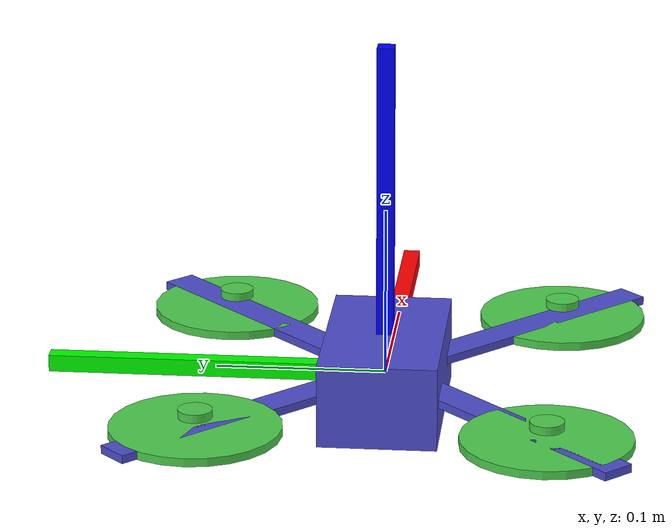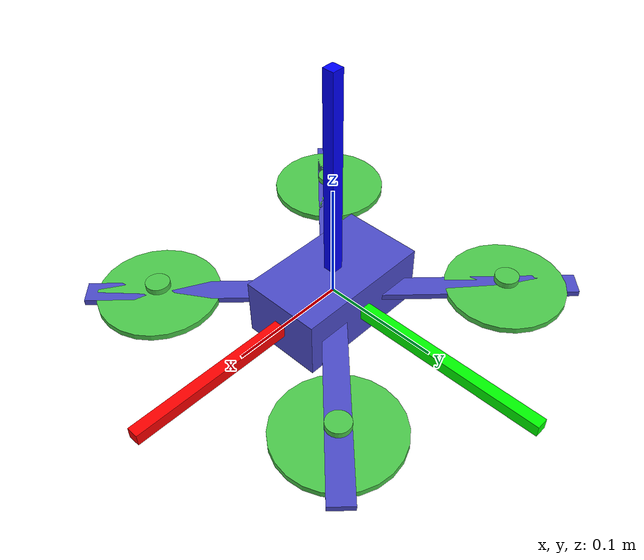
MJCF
<mujoco model="quadrotor0">
    <compiler inertiafromgeom="true" coordinate="local" angle="degree" />
    <option integrator="RK4" timestep="0.002" gravity="0 0 -9.81" density="1.225" viscosity="1e-5" />
    <worldbody>
        <geom name="floor" pos="0 0 -5" size="1000 1000 .2" type="plane" conaffinity="1" rgba="1 1 1 1" condim="3" />
        <body name="quadrotor" pos="0 0 0">
            <camera name="track" mode="trackcom" pos="0 -5 -1.25" xyaxes="1 0 0 0 0 1" />
            <geom name="core" type="box" pos="0 0 0" quat="1. 0. 0. 0" size="0.06 0.035 0.025" rgba="0.3 0.3 0.8 1" mass="1.0" />

            <geom name="arm0" type="box" pos=".071 0.071 0.0" size="0.1 0.01 0.0025" quat=".924 0.0 0.0 0.383" rgba="0.3 0.3 0.8 1" density="1000" />
            <geom name="arm1" type="box" pos=".071 -0.071 0.0" size="0.1 0.01 0.0025" quat=".383 0.0 0.0 0.924" rgba="0.3 0.3 0.8 1" density="1000" />
            <geom name="arm2" type="box" pos="-0.071 -0.071 0.0" size="0.1 0.01 0.0025" quat="-.383 0.0 0.0 0.924" rgba="0.3 0.3 0.8 1" density="1000" />
            <geom name="arm3" type="box" pos="-.071 0.071 0.0" size="0.1 0.01 0.0025" quat=".924 0.0 0.0 -0.383" rgba="0.3 0.3 0.8 1" density="1000" />

            <joint name="root" type="free" damping="0" armature="0" pos="0 0 0" />

            <site name="motor0" type="cylinder" pos=" 0.1  0.1 0.01" size="0.01 0.0025" quat="1.0 0.0 0.0 0." rgba="0.3 0.8 0.3 1" />
            <site name="motor1" type="cylinder" pos=" 0.1 -0.1 0.01" size="0.01 0.0025" quat="1.0 0.0 0.0 0." rgba="0.3 0.8 0.3 1" />
            <site name="motor2" type="cylinder" pos="-0.1 -0.1 0.01" size="0.01 0.0025" quat="1.0 0.0 0.0 0." rgba="0.3 0.8 0.3 1" />
            <site name="motor3" type="cylinder" pos="-0.1  0.1 0.01" size="0.01 0.0025" quat="1.0 0.0 0.0 0." rgba="0.3 0.8 0.3 1" />

            <geom name="thruster0" type="cylinder" pos="0.1 0.1 0" size="0.05 0.0025" quat="1.0 0.0 0.0 0." rgba="0.3 0.8 0.3 1" density="1000" />
            <geom name="thruster1" type="cylinder" pos="0.1 -0.1 0" size="0.05 0.0025" quat="1.0 0.0 0.0 0." rgba="0.3 0.8 0.3 1" density="1000" />
            <geom name="thruster2" type="cylinder" pos="-0.1 -0.1 0" size="0.05 0.0025" quat="1.0 0.0 0.0 0." rgba="0.3 0.8 0.3 1" density="1000" />
            <geom name="thruster3" type="cylinder" pos="-0.1 0.1 0" size="0.05 0.0025" quat="1.0 0.0 0.0 0." rgba="0.3 0.8 0.3 1" density="1000" />

            <site name="qcX" type="box" pos="0.1 0.0 0.0" size="0.1 0.005 0.005" quat=" 1.000  0.0  0.0    0." rgba="1 0 0 1" />
            <site name="qcY" type="box" pos="0.0 0.1 0.0" size="0.1 0.005 0.005" quat=" 0.707  0.0  0.0    0.707" rgba="0 1 0 1" />
            <site name="qcZ" type="box" pos="0.0 0.0 0.1" size="0.1 0.005 0.005" quat="-0.707  0.0  0.707  0." rgba="0 0 1 1" />
        </body>
    </worldbody>
    <actuator>
        <motor site="motor0" ctrllimited="true" ctrlrange="0.0 10.0" gear="0 0 2.0 0 0 -0.2" />
        <motor site="motor1" ctrllimited="true" ctrlrange="0.0 10.0" gear="0 0 2.0 0 0 0.2" />
        <motor site="motor2" ctrllimited="true" ctrlrange="0.0 10.0" gear="0 0 2.0 0 0 -0.2" />
        <motor site="motor3" ctrllimited="true" ctrlrange="0.0 10.0" gear="0 0 2.0 0 0 0.2" />
    </actuator>
</mujoco>
